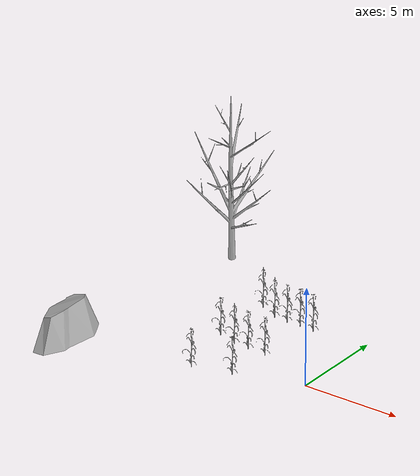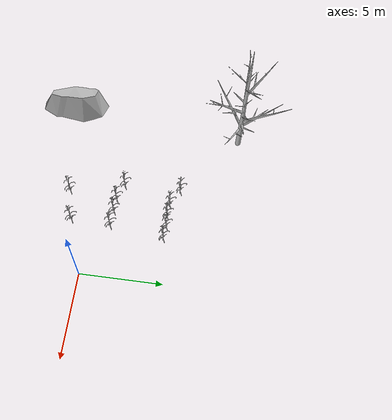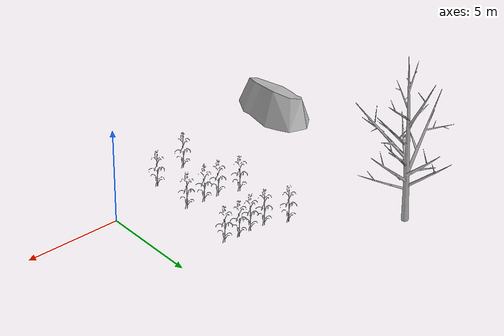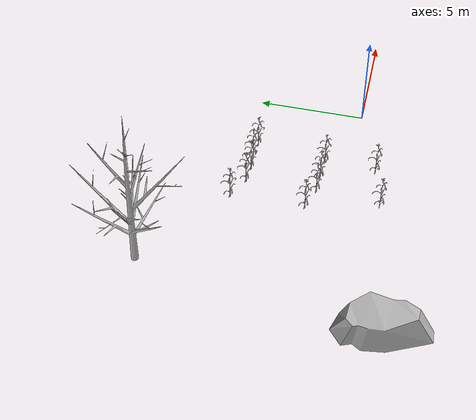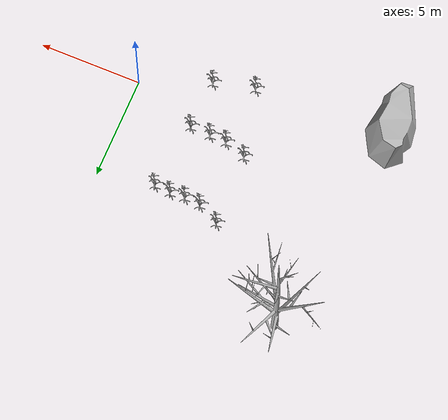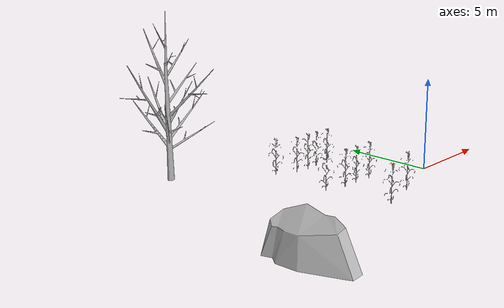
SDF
<sdf version="1.6">
 <world name="default">
  <model name="corn_stalk2_clone_37">
   <static>1</static>
   <link name="corn_stalk2_link">
    <collision name="collision">
     <geometry><mesh><scale>1 1 1</scale><uri>model://corn_type2/meshes/model.stl</uri></mesh></geometry>
    </collision>
    <visual name="corn_stalk2_visual">
     <geometry><mesh><uri>model://corn_type2/meshes/model.stl</uri><scale>1 1 1</scale></mesh></geometry>
     <material>
      <script>
       <uri>model://corn_type2/materials/scripts</uri>
       <uri>model://corn_type2/materials/textures</uri>
       <name>corn_type2/Diffuse</name>
      </script>
     </material>
    </visual>
   </link>
   <pose>-5.3137 -1.62118 0 0 -0 0</pose>
  </model>
  <model name="corn_stalk2_clone_38">
   <static>1</static>
   <link name="corn_stalk2_link">
    <collision name="collision">
     <geometry><mesh><scale>1 1 1</scale><uri>model://corn_type2/meshes/model.stl</uri></mesh></geometry>
    </collision>
    <visual name="corn_stalk2_visual">
     <geometry><mesh><uri>model://corn_type2/meshes/model.stl</uri><scale>1 1 1</scale></mesh></geometry>
     <material>
      <script>
       <uri>model://corn_type2/materials/scripts</uri>
       <uri>model://corn_type2/materials/textures</uri>
       <name>corn_type2/Diffuse</name>
      </script>
     </material>
    </visual>
   </link>
   <pose>-5.05907 1.39347 0 0 -0 0</pose>
  </model>
  <model name="corn_stalk2_clone_39">
   <static>1</static>
   <link name="corn_stalk2_link">
    <collision name="collision">
     <geometry><mesh><scale>1 1 1</scale><uri>model://corn_type2/meshes/model.stl</uri></mesh></geometry>
    </collision>
    <visual name="corn_stalk2_visual">
     <geometry><mesh><uri>model://corn_type2/meshes/model.stl</uri><scale>1 1 1</scale></mesh></geometry>
     <material>
      <script>
       <uri>model://corn_type2/materials/scripts</uri>
       <uri>model://corn_type2/materials/textures</uri>
       <name>corn_type2/Diffuse</name>
      </script>
     </material>
    </visual>
   </link>
   <pose>-4.23369 1.35531 0 0 -0 0</pose>
  </model>
  <model name="corn_stalk2_clone_40">
   <static>1</static>
   <link name="corn_stalk2_link">
    <collision name="collision">
     <geometry><mesh><scale>1 1 1</scale><uri>model://corn_type2/meshes/model.stl</uri></mesh></geometry>
    </collision>
    <visual name="corn_stalk2_visual">
     <geometry><mesh><uri>model://corn_type2/meshes/model.stl</uri><scale>1 1 1</scale></mesh></geometry>
     <material>
      <script>
       <uri>model://corn_type2/materials/scripts</uri>
       <uri>model://corn_type2/materials/textures</uri>
       <name>corn_type2/Diffuse</name>
      </script>
     </material>
    </visual>
   </link>
   <pose>-3.22905 1.30156 0 0 -0 0</pose>
  </model>
  <model name="corn_stalk2_clone_59">
   <static>1</static>
   <link name="corn_stalk2_link">
    <collision name="collision">
     <geometry><mesh><scale>1 1 1</scale><uri>model://corn_type2/meshes/model.stl</uri></mesh></geometry>
    </collision>
    <visual name="corn_stalk2_visual">
     <geometry><mesh><uri>model://corn_type2/meshes/model.stl</uri><scale>1 1 1</scale></mesh></geometry>
     <material>
      <script>
       <uri>model://corn_type2/materials/scripts</uri>
       <uri>model://corn_type2/materials/textures</uri>
       <name>corn_type2/Diffuse</name>
      </script>
     </material>
    </visual>
   </link>
   <pose>-2.81843 4.61751 0 0 -0 0</pose>
  </model>
  <model name="corn_stalk2_clone_60">
   <static>1</static>
   <link name="corn_stalk2_link">
    <collision name="collision">
     <geometry><mesh><scale>1 1 1</scale><uri>model://corn_type2/meshes/model.stl</uri></mesh></geometry>
    </collision>
    <visual name="corn_stalk2_visual">
     <geometry><mesh><uri>model://corn_type2/meshes/model.stl</uri><scale>1 1 1</scale></mesh></geometry>
     <material>
      <script>
       <uri>model://corn_type2/materials/scripts</uri>
       <uri>model://corn_type2/materials/textures</uri>
       <name>corn_type2/Diffuse</name>
      </script>
     </material>
    </visual>
   </link>
   <pose>-3.61973 4.69641 0 0 -0 0</pose>
  </model>
  <model name="corn_stalk2_clone_61">
   <static>1</static>
   <link name="corn_stalk2_link">
    <collision name="collision">
     <geometry><mesh><scale>1 1 1</scale><uri>model://corn_type2/meshes/model.stl</uri></mesh></geometry>
    </collision>
    <visual name="corn_stalk2_visual">
     <geometry><mesh><uri>model://corn_type2/meshes/model.stl</uri><scale>1 1 1</scale></mesh></geometry>
     <material>
      <script>
       <uri>model://corn_type2/materials/scripts</uri>
       <uri>model://corn_type2/materials/textures</uri>
       <name>corn_type2/Diffuse</name>
      </script>
     </material>
    </visual>
   </link>
   <pose>-4.34299 4.6519 0 0 -0 0</pose>
  </model>
  <model name="corn_stalk2_clone_62">
   <static>1</static>
   <link name="corn_stalk2_link">
    <collision name="collision">
     <geometry><mesh><scale>1 1 1</scale><uri>model://corn_type2/meshes/model.stl</uri></mesh></geometry>
    </collision>
    <visual name="corn_stalk2_visual">
     <geometry><mesh><uri>model://corn_type2/meshes/model.stl</uri><scale>1 1 1</scale></mesh></geometry>
     <material>
      <script>
       <uri>model://corn_type2/materials/scripts</uri>
       <uri>model://corn_type2/materials/textures</uri>
       <name>corn_type2/Diffuse</name>
      </script>
     </material>
    </visual>
   </link>
   <pose>-5.13111 4.7225 0 0 -0 0</pose>
  </model>
  <model name="tree_type3">
   <static>1</static>
   <link name="link">
    <collision name="collision"><geometry><box><size>0.3 0.3 10</size></box></geometry></collision>
    <visual name="corn_stalk4_visual">
     <geometry><mesh><uri>model://tree_type3/meshes/model.stl</uri><scale>1 1 1</scale></mesh></geometry>
     <material>
      <script>
       <uri>model://tree_type3/materials/scripts</uri>
       <uri>model://tree_type3/materials/textures</uri>
       <name>tree_type3/Diffuse</name>
      </script>
     </material>
    </visual>
   </link>
   <pose>-10.4964 8.60404 0 0 -0 0</pose>
  </model>
  <model name="rock_type1">
   <static>1</static>
   <link name="link">
    <collision name="collision">
     <geometry><mesh><uri>model://rock_type1/meshes/model.dae</uri></mesh></geometry>
    </collision>
    <visual name="visual">
     <geometry><mesh><uri>model://rock_type1/meshes/model.dae</uri></mesh></geometry>
    </visual>
   </link>
   <pose>-13.6996 -0.953933 0 0 0 -1.21748</pose>
  </model>
  <model name="corn_stalk2_0_clone_0">
   <static>1</static>
   <link name="corn_stalk2_link">
    <collision name="collision">
     <geometry><mesh><scale>1 1 1</scale><uri>model://corn_type2/meshes/model.stl</uri></mesh></geometry>
    </collision>
    <visual name="corn_stalk2_visual">
     <geometry><mesh><uri>model://corn_type2/meshes/model.stl</uri><scale>1 1 1</scale></mesh></geometry>
     <material>
      <script>
       <uri>model://corn_type2/materials/scripts</uri>
       <uri>model://corn_type2/materials/textures</uri>
       <name>corn_type2/Diffuse</name>
      </script>
     </material>
    </visual>
   </link>
   <pose>-6.17956 5.25128 0 0 -0 0</pose>
  </model>
  <model name="corn_stalk2_0_clone_4">
   <static>1</static>
   <link name="corn_stalk2_link">
    <collision name="collision">
     <geometry><mesh><scale>1 1 1</scale><uri>model://corn_type2/meshes/model.stl</uri></mesh></geometry>
    </collision>
    <visual name="corn_stalk2_visual">
     <geometry><mesh><uri>model://corn_type2/meshes/model.stl</uri><scale>1 1 1</scale></mesh></geometry>
     <material>
      <script>
       <uri>model://corn_type2/materials/scripts</uri>
       <uri>model://corn_type2/materials/textures</uri>
       <name>corn_type2/Diffuse</name>
      </script>
     </material>
    </visual>
   </link>
   <pose>-6.10886 1.74303 0 0 -0 0</pose>
  </model>
  <model name="corn_stalk2_0_clone_18">
   <static>1</static>
   <link name="corn_stalk2_link">
    <collision name="collision">
     <geometry><mesh><scale>1 1 1</scale><uri>model://corn_type2/meshes/model.stl</uri></mesh></geometry>
    </collision>
    <visual name="corn_stalk2_visual">
     <geometry><mesh><uri>model://corn_type2/meshes/model.stl</uri><scale>1 1 1</scale></mesh></geometry>
     <material>
      <script>
       <uri>model://corn_type2/materials/scripts</uri>
       <uri>model://corn_type2/materials/textures</uri>
       <name>corn_type2/Diffuse</name>
      </script>
     </material>
    </visual>
   </link>
   <pose>-3.33274 -1.1337 0 0 -0 0</pose>
  </model>
 </world>
</sdf>
